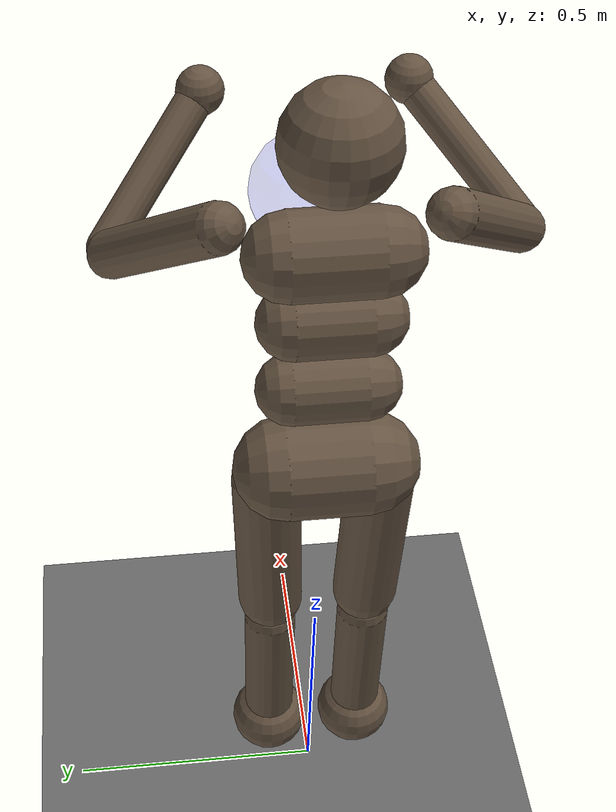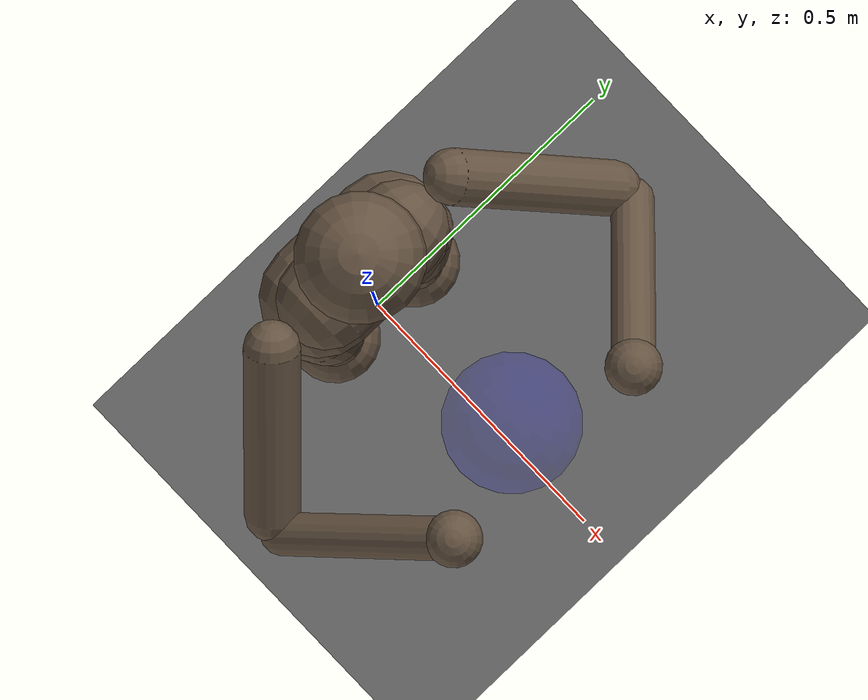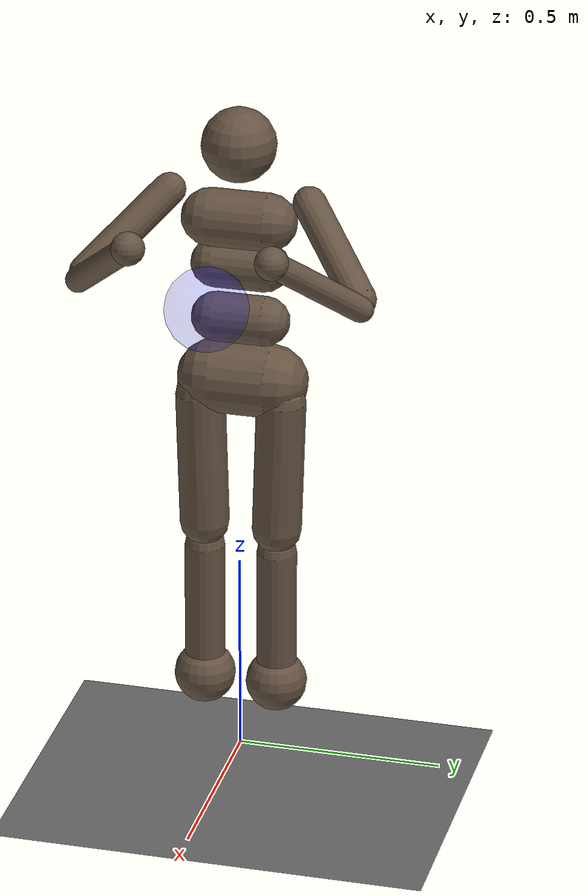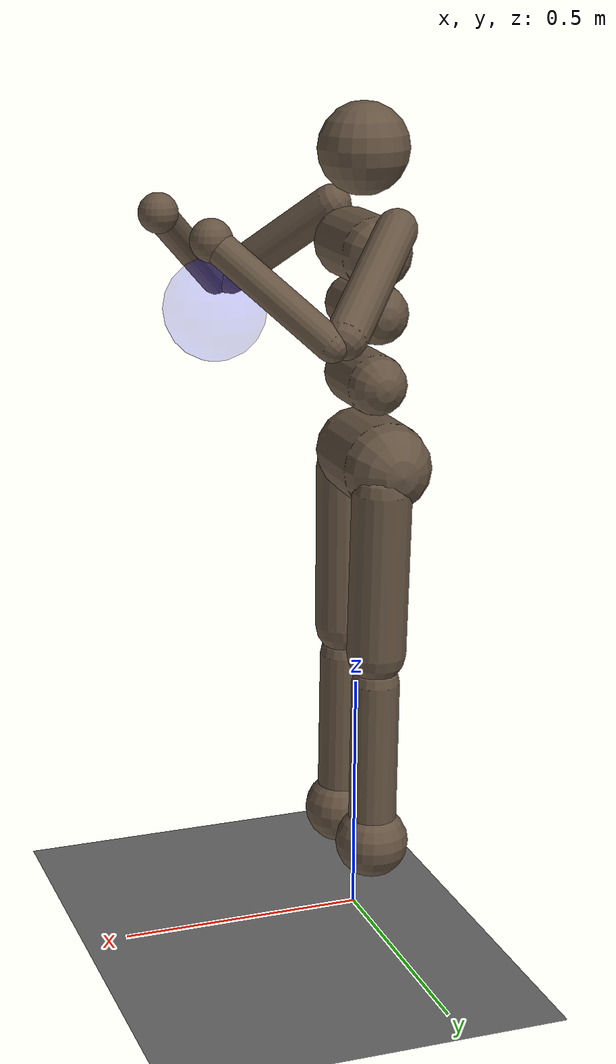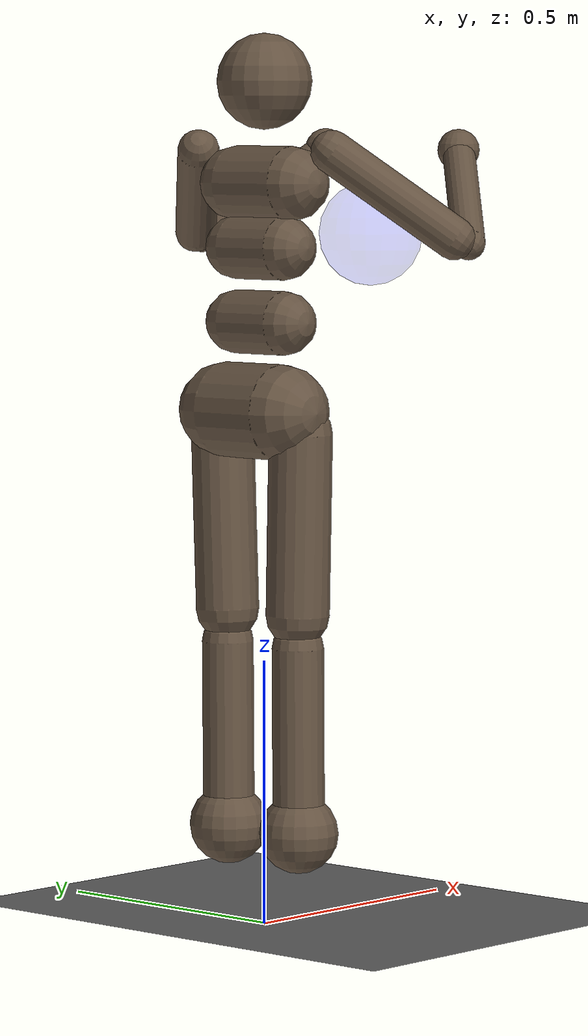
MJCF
<mujoco model="humanoid">
    <compiler angle="degree" inertiafromgeom="true" />
    <default>
        <joint armature="1" damping="1" limited="true" />
        <geom conaffinity="0" condim="3" contype="0" material="geom" rgba="0.4 0.33 0.26 1.0" />
        <motor ctrllimited="true" ctrlrange="-.4 .4" />
    </default>
    <!-- Removed RK4 integrator for brax. -->
    <option iterations="8" timestep="0.006" />
    <custom>
        <!-- brax custom params -->
        <numeric data="2500" name="constraint_limit_stiffness" />
        <numeric data="27000" name="constraint_stiffness" />
        <numeric data="30" name="constraint_ang_damping" />
        <numeric data="80" name="constraint_vel_damping" />
        <numeric data="-0.05" name="ang_damping" />
        <numeric data="0.5" name="joint_scale_pos" />
        <numeric data="0.1" name="joint_scale_ang" />
        <numeric data="0" name="spring_mass_scale" />
        <numeric data="1" name="spring_inertia_scale" />
        <numeric data="20" name="matrix_inv_iterations" />
        <numeric data="15" name="solver_maxls" />
    </custom>
    <size nkey="5" nuser_geom="1" />
    <visual>
        <map fogend="5" fogstart="3" />
    </visual>
    <asset>
        <texture builtin="gradient" height="100" rgb1=".4 .5 .6" rgb2="0 0 0" type="skybox"
            width="100" />
        <texture builtin="flat" height="1278" mark="cross" markrgb="1 1 1" name="texgeom"
            random="0.01" rgb1="0.8 0.6 0.4" rgb2="0.8 0.6 0.4" type="cube" width="127" />
        <texture builtin="checker" height="100" name="texplane" rgb1="0 0 0" rgb2="0.8 0.8 0.8"
            type="2d" width="100" />
        <material name="MatPlane" reflectance="0.5" shininess="1" specular="1" texrepeat="60 60"
            texture="texplane" />
        <material name="geom" texture="texgeom" texuniform="true" />
    </asset>
    <worldbody>
        <light cutoff="100" diffuse="1 1 1" dir="-0 0 -1.3" directional="true" exponent="1"
            pos="0 0 1.3" specular=".1 .1 .1" />

        <geom conaffinity="1" condim="3" friction="1 .1 .1" material="MatPlane" name="floor"
            pos="0 0 0" size="20 20 0.125" type="plane" rgba="0.5 0.5 0.5 1.0" />

        <body name="torso" pos="0 0 1.4">
            <camera name="track" mode="trackcom" pos="0 -4 0" xyaxes="1 0 0 0 0 1" />
            <joint armature="0" damping="0" limited="false" name="root" pos="0 0 0" stiffness="0"
                type="free" />
            <geom fromto="0 -.07 0 0 .07 0" name="torso1" size="0.07" type="capsule" />
            <geom name="head" pos="0 0 .19" size=".09" type="sphere" user="258" />
            <geom fromto="-.01 -.06 -.12 -.01 .06 -.12" name="uwaist" size="0.06" type="capsule" />
            <body name="lwaist" pos="-.01 0 -0.260" quat="1.000 0 -0.002 0">
                <geom fromto="0 -.06 0 0 .06 0" name="lwaist" size="0.06" type="capsule" />
                <joint armature="0.02" axis="0 0 1" damping="5" name="abdomen_z" pos="0 0 0.065"
                    range="-45 45" stiffness="20" type="hinge" />
                <joint armature="0.02" axis="0 1 0" damping="5" name="abdomen_y" pos="0 0 0.065"
                    range="-75 30" stiffness="10" type="hinge" />
                <body name="pelvis" pos="0 0 -0.165" quat="1.000 0 -0.002 0">
                    <joint armature="0.02" axis="1 0 0" damping="5" name="abdomen_x" pos="0 0 0.1"
                        range="-35 35" stiffness="10" type="hinge" />
                    <geom fromto="-.02 -.07 0 -.02 .07 0" name="butt" size="0.09" type="capsule" />
                    <body name="right_thigh" pos="0 -0.1 -0.04">
                        <joint armature="0.01" axis="1 0 0" damping="5" name="right_hip_x"
                            pos="0 0 0" range="-25 5" stiffness="10" type="hinge" />
                        <joint armature="0.01" axis="0 0 1" damping="5" name="right_hip_z"
                            pos="0 0 0" range="-60 35" stiffness="10" type="hinge" />
                        <joint armature="0.0080" axis="0 1 0" damping="5" name="right_hip_y"
                            pos="0 0 0" range="-110 20" stiffness="20" type="hinge" />
                        <geom fromto="0 0 0 0 0.01 -.34" name="right_thigh1" size="0.06"
                            type="capsule" />
                        <body name="right_shin" pos="0 0.01 -0.403">
                            <joint armature="0.0060" axis="0 -1 0" name="right_knee" pos="0 0 .02"
                                range="-160 -2" type="hinge" />
                            <geom fromto="0 0 0 0 0 -.3" name="right_shin1" size="0.049"
                                type="capsule" />
                            <body name="right_foot" pos="0 0 -0.45">
                                <geom contype="1" name="right_foot" pos="0 0 0.1" size="0.075"
                                    type="sphere" user="0" />
                            </body>
                        </body>
                    </body>
                    <body name="left_thigh" pos="0 0.1 -0.04">
                        <joint armature="0.01" axis="-1 0 0" damping="5" name="left_hip_x"
                            pos="0 0 0" range="-25 5" stiffness="10" type="hinge" />
                        <joint armature="0.01" axis="0 0 -1" damping="5" name="left_hip_z"
                            pos="0 0 0" range="-60 35" stiffness="10" type="hinge" />
                        <joint armature="0.01" axis="0 1 0" damping="5" name="left_hip_y"
                            pos="0 0 0" range="-110 20" stiffness="20" type="hinge" />
                        <geom fromto="0 0 0 0 -0.01 -.34" name="left_thigh1" size="0.06"
                            type="capsule" />
                        <body name="left_shin" pos="0 -0.01 -0.403">
                            <joint armature="0.0060" axis="0 -1 0" name="left_knee" pos="0 0 .02"
                                range="-160 -2" stiffness="1" type="hinge" />
                            <geom fromto="0 0 0 0 0 -.3" name="left_shin1" size="0.049"
                                type="capsule" />
                            <body name="left_foot" pos="0 0 -0.45">
                                <geom contype="1" name="left_foot" type="sphere" size="0.075"
                                    pos="0 0 0.1" user="0" />
                            </body>
                        </body>
                    </body>
                </body>
            </body>
            <body name="right_upper_arm" pos="0 -0.17 0.06">
                <joint armature="0.0068" axis="2 1 1" name="right_shoulder1" pos="0 0 0"
                    range="-85 60" stiffness="1" type="hinge" />
                <joint armature="0.0051" axis="0 -1 1" name="right_shoulder2" pos="0 0 0"
                    range="-85 60" stiffness="1" type="hinge" />
                <geom fromto="0 0 0 .16 -.16 -.16" name="right_uarm1" size="0.04 0.16"
                    type="capsule" />
                <body name="right_lower_arm" pos=".18 -.18 -.18">
                    <joint armature="0.0028" axis="0 -1 1" name="right_elbow" pos="0 0 0"
                        range="-90 50" stiffness="0" type="hinge" />
                    <geom fromto="0.01 0.01 0.01 .17 .17 .17" name="right_larm" size="0.031"
                        type="capsule" />
                    <geom name="right_hand" pos=".18 .18 .18" size="0.04" type="sphere" />
                    <camera pos="0 0 0" />
                </body>
            </body>
            <body name="left_upper_arm" pos="0 0.17 0.06">
                <joint armature="0.0068" axis="2 -1 1" name="left_shoulder1" pos="0 0 0"
                    range="-60 85" stiffness="1" type="hinge" />
                <joint armature="0.0051" axis="0 1 1" name="left_shoulder2" pos="0 0 0"
                    range="-60 85" stiffness="1" type="hinge" />
                <geom fromto="0 0 0 .16 .16 -.16" name="left_uarm1" size="0.04 0.16" type="capsule" />
                <body name="left_lower_arm" pos=".18 .18 -.18">
                    <joint armature="0.0028" axis="0 -1 -1" name="left_elbow" pos="0 0 0"
                        range="-90 50" stiffness="0" type="hinge" />
                    <geom fromto="0.01 -0.01 0.01 .17 -.17 .17" name="left_larm" size="0.031"
                        type="capsule" />
                    <geom name="left_hand" pos=".18 -.18 .18" size="0.04" type="sphere" />
                </body>
            </body>
        </body>
        <body name="torso_ref" pos="0.3 0 1.3">
            <geom name="torso_geoms" type="sphere" size="0.1" rgba="0 0 1 0.1"
                density="1000000.0" contype="0" conaffinity="0" pos="0.0 0 0.0" />
            <joint name="torso_x" type="slide" axis="1 0 0" range="-1 1" damping="100" />
        </body>

        <body name="left_thigh_ref" pos="0.3 0 1.3">
            <geom name="left_thigh_geoms" type="sphere" size="0.1" rgba="0 0 1 0.1"
                density="1000000.0" contype="0" conaffinity="0" pos="0.0 0 0.0" />
            <joint name="left_thigh_x" type="slide" axis="1 0 0" range="-1 1" damping="100" />
        </body>

        <body name="right_thigh_ref" pos="0.3 0 1.3">
            <geom name="right_thigh_geoms" type="sphere" size="0.1" rgba="0 0 1 0.1"
                density="1000000.0" contype="0" conaffinity="0" pos="0.0 0 0.0" />
            <joint name="right_thigh_x" type="slide" axis="1 0 0" range="-1 1" damping="100" />
        </body>

        <body name="left_shin_ref" pos="0.3 0 1.3">
            <geom name="left_shin_geoms" type="sphere" size="0.1" rgba="0 0 1 0.1"
                density="1000000.0" contype="0" conaffinity="0" pos="0.0 0 0.0" />
            <joint name="left_shin_x" type="slide" axis="1 0 0" range="-1 1" damping="100" />
        </body>

        <body name="right_shin_ref" pos="0.3 0 1.3">
            <geom name="right_shin_geoms" type="sphere" size="0.1" rgba="0 0 1 0.1"
                density="1000000.0" contype="0" conaffinity="0" pos="0.0 0 0.0" />
            <joint name="right_shin_x" type="slide" axis="1 0 0" range="-1 1" damping="100" />
        </body>
    </worldbody>

    <actuator>
        <motor gear="350" joint="abdomen_y" name="abdomen_y" />
        <motor gear="350" joint="abdomen_z" name="abdomen_z" />
        <motor gear="350" joint="abdomen_x" name="abdomen_x" />
        <motor gear="350" joint="right_hip_x" name="right_hip_x" />
        <motor gear="350" joint="right_hip_z" name="right_hip_z" />
        <motor gear="350" joint="right_hip_y" name="right_hip_y" />
        <motor gear="350" joint="right_knee" name="right_knee" />
        <motor gear="350" joint="left_hip_x" name="left_hip_x" />
        <motor gear="350" joint="left_hip_z" name="left_hip_z" />
        <motor gear="350" joint="left_hip_y" name="left_hip_y" />
        <motor gear="350" joint="left_knee" name="left_knee" />
        <motor gear="100" joint="right_shoulder1" name="right_shoulder1" />
        <motor gear="100" joint="right_shoulder2" name="right_shoulder2" />
        <motor gear="100" joint="right_elbow" name="right_elbow" />
        <motor gear="100" joint="left_shoulder1" name="left_shoulder1" />
        <motor gear="100" joint="left_shoulder2" name="left_shoulder2" />
        <motor gear="100" joint="left_elbow" name="left_elbow" />
    </actuator>
</mujoco>
